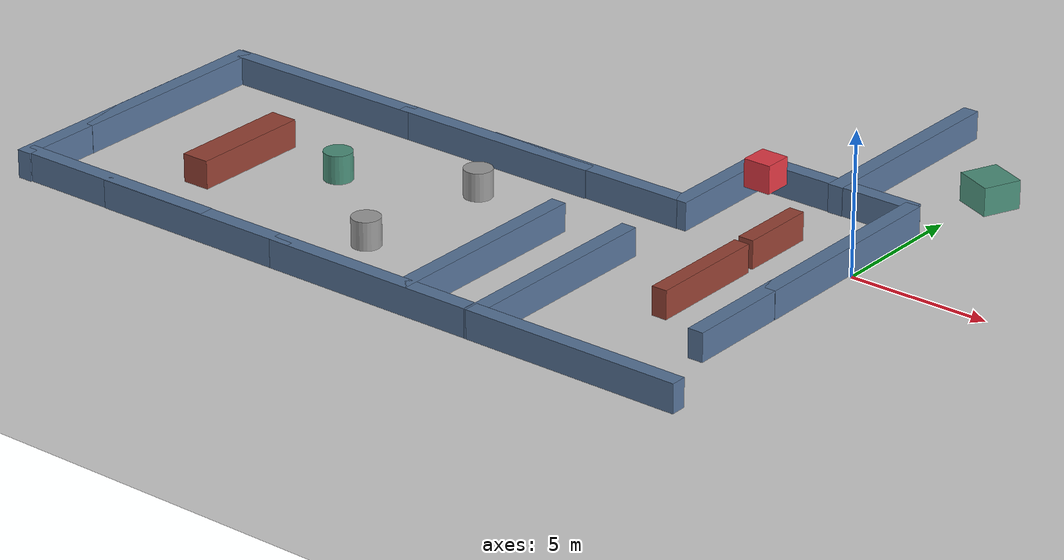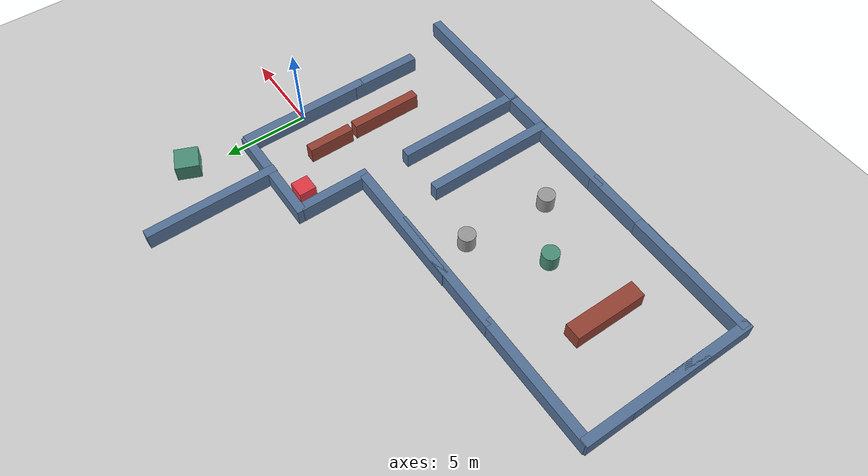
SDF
<sdf version="1.6">
 <world name="default">
  <model name="ground_plane">
   <static>1</static>
   <link name="link">
    <collision name="collision">
     <geometry><plane><normal>0 0 1</normal><size>100 100</size></plane></geometry>
     <surface><friction><ode><mu>100</mu><mu2>50</mu2></ode></friction></surface>
    </collision>
    <visual name="visual">
     <cast_shadows>0</cast_shadows>
     <geometry><plane><normal>0 0 1</normal><size>100 100</size></plane></geometry>
     <material>
      <script><uri>file://media/materials/scripts/gazebo.material</uri><name>Gazebo/Grey</name></script>
     </material>
    </visual>
   </link>
  </model>
  <model name="mazesummer1">
   <pose>0 -0 0.499991 0 -0 0</pose>
   <link name="cylinder_big_link">
    <pose>-16.6447 -5.27396 0.499997 0 -0 0</pose>
    <inertial>
     <mass>1</mass>
     <inertia><ixx>0.15</ixx><ixy>0</ixy><ixz>0</ixz><iyy>0.15</iyy><iyz>0</iyz><izz>0.13</izz></inertia>
    </inertial>
    <visual name="visual">
     <geometry><cylinder><radius>0.5</radius><length>1</length></cylinder></geometry>
     <material>
      <lighting>1</lighting>
      <script><uri>file://media/materials/scripts/gazebo.material</uri><name>Gazebo/Grey</name></script>
      <ambient>0.290196 0.560784 0.47451 1</ambient>
      <diffuse>0.290196 0.560784 0.47451 1</diffuse>
      <specular>0.01 0.01 0.01 1</specular>
      <emissive>0 0 0 1</emissive>
     </material>
    </visual>
    <collision name="collision">
     <geometry><cylinder><radius>0.5</radius><length>1</length></cylinder></geometry>
     <surface>
      <friction>
       <ode><mu>1</mu><mu2>1</mu2><fdir1>0 0 0</fdir1><slip1>0</slip1><slip2>0</slip2></ode>
       <torsional>
        <coefficient>1</coefficient>
        <patch_radius>0</patch_radius>
        <surface_radius>0</surface_radius>
        <use_patch_radius>1</use_patch_radius>
        <ode><slip>0</slip></ode>
       </torsional>
      </friction>
      <bounce><restitution_coefficient>0</restitution_coefficient><threshold>1e+06</threshold></bounce>
      <contact>
       <collide_without_contact>0</collide_without_contact>
       <collide_without_contact_bitmask>1</collide_without_contact_bitmask>
       <collide_bitmask>1</collide_bitmask>
       <ode>
        <soft_cfm>0</soft_cfm>
        <soft_erp>0.2</soft_erp>
        <kp>1e+13</kp>
        <kd>1</kd>
        <max_vel>0.01</max_vel>
        <min_depth>0</min_depth>
       </ode>
       <bullet>
        <split_impulse>1</split_impulse>
        <split_impulse_penetration_threshold>-0.01</split_impulse_penetration_threshold>
        <soft_cfm>0</soft_cfm>
        <soft_erp>0.2</soft_erp>
        <kp>1e+13</kp>
        <kd>1</kd>
       </bullet>
      </contact>
     </surface>
    </collision>
   </link>
   <link name="wall1_custom_link">
    <pose>-20.6541 -5.60724 -0.000514 -0.000514 -6e-06 0</pose>
    <inertial>
     <mass>2.3361</mass>
     <inertia><ixx>0.25269</ixx><ixy>0</ixy><ixz>0</ixz><iyy>3.75965</iyy><iyz>0</iyz><izz>3.62299</izz></inertia>
    </inertial>
    <visual name="visual">
     <geometry><box><size>1 4.35376 1</size></box></geometry>
     <material>
      <lighting>1</lighting>
      <script><uri>file://media/materials/scripts/gazebo.material</uri><name>Gazebo/Grey</name></script>
      <ambient>0.580392 0.25098 0.196078 1</ambient>
      <diffuse>0.580392 0.25098 0.196078 1</diffuse>
      <specular>0.01 0.01 0.01 1</specular>
      <emissive>0 0 0 1</emissive>
      <shader type="pixel"/>
     </material>
    </visual>
    <collision name="collision">
     <geometry><box><size>1 4.35376 1</size></box></geometry>
     <surface>
      <friction>
       <ode><mu>1</mu><mu2>1</mu2><fdir1>0 0 0</fdir1><slip1>0</slip1><slip2>0</slip2></ode>
       <torsional>
        <coefficient>1</coefficient>
        <patch_radius>0</patch_radius>
        <surface_radius>0</surface_radius>
        <use_patch_radius>1</use_patch_radius>
        <ode><slip>0</slip></ode>
       </torsional>
      </friction>
      <bounce><restitution_coefficient>0</restitution_coefficient><threshold>1e+06</threshold></bounce>
      <contact>
       <collide_without_contact>0</collide_without_contact>
       <collide_without_contact_bitmask>1</collide_without_contact_bitmask>
       <collide_bitmask>1</collide_bitmask>
       <ode>
        <soft_cfm>0</soft_cfm>
        <soft_erp>0.2</soft_erp>
        <kp>1e+13</kp>
        <kd>1</kd>
        <max_vel>0.01</max_vel>
        <min_depth>0</min_depth>
       </ode>
       <bullet>
        <split_impulse>1</split_impulse>
        <split_impulse_penetration_threshold>-0.01</split_impulse_penetration_threshold>
        <soft_cfm>0</soft_cfm>
        <soft_erp>0.2</soft_erp>
        <kp>1e+13</kp>
        <kd>1</kd>
       </bullet>
      </contact>
     </surface>
    </collision>
   </link>
   <link name="maze2_box">
    <pose>-5.520520 2.979450 0.5 0 -0 0</pose>
    <inertial>
     <mass>1</mass>
     <inertia>
      <ixx>0.166667</ixx>
      <ixy>0</ixy>
      <ixz>0</ixz>
      <iyy>0.166667</iyy>
      <iyz>0</iyz>
      <izz>0.166667</izz>
     </inertia>
    </inertial>
    <visual name="visual">
     <geometry><box><size>1 1 1</size></box></geometry>
     <material>
      <lighting>1</lighting>
      <script><uri>file://media/materials/scripts/gazebo.material</uri><name>Gazebo/Grey</name></script>
      <ambient>0.882353 0.219608 0.262745 1</ambient>
      <diffuse>0.882353 0.219608 0.262745 1</diffuse>
      <specular>0.01 0.01 0.01 1</specular>
      <emissive>0 0 0 1</emissive>
     </material>
    </visual>
    <collision name="collision">
     <geometry><box><size>1 1 1</size></box></geometry>
     <surface>
      <friction>
       <ode><mu>1</mu><mu2>1</mu2><fdir1>0 0 0</fdir1><slip1>0</slip1><slip2>0</slip2></ode>
       <torsional>
        <coefficient>1</coefficient>
        <patch_radius>0</patch_radius>
        <surface_radius>0</surface_radius>
        <use_patch_radius>1</use_patch_radius>
        <ode><slip>0</slip></ode>
       </torsional>
      </friction>
      <bounce><restitution_coefficient>0</restitution_coefficient><threshold>1e+06</threshold></bounce>
      <contact>
       <collide_without_contact>0</collide_without_contact>
       <collide_without_contact_bitmask>1</collide_without_contact_bitmask>
       <collide_bitmask>1</collide_bitmask>
       <ode>
        <soft_cfm>0</soft_cfm>
        <soft_erp>0.2</soft_erp>
        <kp>1e+13</kp>
        <kd>1</kd>
        <max_vel>0.01</max_vel>
        <min_depth>0</min_depth>
       </ode>
       <bullet>
        <split_impulse>1</split_impulse>
        <split_impulse_penetration_threshold>-0.01</split_impulse_penetration_threshold>
        <soft_cfm>0</soft_cfm>
        <soft_erp>0.2</soft_erp>
        <kp>1e+13</kp>
        <kd>1</kd>
       </bullet>
      </contact>
     </surface>
    </collision>
   </link>
   <link name="wall0_link">
    <pose>-21.4897 -10.6297 9e-06 0 -0 0</pose>
    <inertial>
     <mass>4.30693</mass>
     <inertia><ixx>0.46587</ixx><ixy>0</ixy><ixz>0</ixz><iyy>22.6991</iyy><iyz>0</iyz><izz>22.4471</izz></inertia>
    </inertial>
    <visual name="visual">
     <geometry><box><size>7.88951 0.545905 1</size></box></geometry>
     <material>
      <lighting>1</lighting>
      <script><uri>file://media/materials/scripts/gazebo.material</uri><name>Gazebo/Grey</name></script>
      <ambient>0.333333 0.447059 0.592157 1</ambient>
      <diffuse>0.333333 0.447059 0.592157 1</diffuse>
      <specular>0.01 0.01 0.01 1</specular>
      <emissive>0 0 0 1</emissive>
      <shader type="pixel"/>
     </material>
    </visual>
    <collision name="collision">
     <geometry><box><size>7.88951 0.545905 1</size></box></geometry>
     <surface>
      <friction>
       <ode><mu>1</mu><mu2>1</mu2><fdir1>0 0 0</fdir1><slip1>0</slip1><slip2>0</slip2></ode>
       <torsional>
        <coefficient>1</coefficient>
        <patch_radius>0</patch_radius>
        <surface_radius>0</surface_radius>
        <use_patch_radius>1</use_patch_radius>
        <ode><slip>0</slip></ode>
       </torsional>
      </friction>
      <bounce><restitution_coefficient>0</restitution_coefficient><threshold>1e+06</threshold></bounce>
      <contact>
       <collide_without_contact>0</collide_without_contact>
       <collide_without_contact_bitmask>1</collide_without_contact_bitmask>
       <collide_bitmask>1</collide_bitmask>
       <ode>
        <soft_cfm>0</soft_cfm>
        <soft_erp>0.2</soft_erp>
        <kp>1e+13</kp>
        <kd>1</kd>
        <max_vel>0.01</max_vel>
        <min_depth>0</min_depth>
       </ode>
       <bullet>
        <split_impulse>1</split_impulse>
        <split_impulse_penetration_threshold>-0.01</split_impulse_penetration_threshold>
        <soft_cfm>0</soft_cfm>
        <soft_erp>0.2</soft_erp>
        <kp>1e+13</kp>
        <kd>1</kd>
       </bullet>
      </contact>
     </surface>
    </collision>
   </link>
   <link name="wall1_link">
    <pose>-17.8012 -10.6509 9e-06 0 -0 0</pose>
    <inertial>
     <mass>4.30693</mass>
     <inertia><ixx>0.46587</ixx><ixy>0</ixy><ixz>0</ixz><iyy>22.6991</iyy><iyz>0</iyz><izz>22.4471</izz></inertia>
    </inertial>
    <visual name="visual">
     <geometry><box><size>7.88951 0.545905 1</size></box></geometry>
     <material>
      <lighting>1</lighting>
      <script><uri>file://media/materials/scripts/gazebo.material</uri><name>Gazebo/Grey</name></script>
      <ambient>0.333333 0.447059 0.592157 1</ambient>
      <diffuse>0.333333 0.447059 0.592157 1</diffuse>
      <specular>0.01 0.01 0.01 1</specular>
      <emissive>0 0 0 1</emissive>
      <shader type="pixel"/>
     </material>
    </visual>
    <collision name="collision">
     <geometry><box><size>7.88951 0.545905 1</size></box></geometry>
     <surface>
      <friction>
       <ode><mu>1</mu><mu2>1</mu2><fdir1>0 0 0</fdir1><slip1>0</slip1><slip2>0</slip2></ode>
       <torsional>
        <coefficient>1</coefficient>
        <patch_radius>0</patch_radius>
        <surface_radius>0</surface_radius>
        <use_patch_radius>1</use_patch_radius>
        <ode><slip>0</slip></ode>
       </torsional>
      </friction>
      <bounce><restitution_coefficient>0</restitution_coefficient><threshold>1e+06</threshold></bounce>
      <contact>
       <collide_without_contact>0</collide_without_contact>
       <collide_without_contact_bitmask>1</collide_without_contact_bitmask>
       <collide_bitmask>1</collide_bitmask>
       <ode>
        <soft_cfm>0</soft_cfm>
        <soft_erp>0.2</soft_erp>
        <kp>1e+13</kp>
        <kd>1</kd>
        <max_vel>0.01</max_vel>
        <min_depth>0</min_depth>
       </ode>
       <bullet>
        <split_impulse>1</split_impulse>
        <split_impulse_penetration_threshold>-0.01</split_impulse_penetration_threshold>
        <soft_cfm>0</soft_cfm>
        <soft_erp>0.2</soft_erp>
        <kp>1e+13</kp>
        <kd>1</kd>
       </bullet>
      </contact>
     </surface>
    </collision>
   </link>
   <link name="wall20_link">
    <pose>-21.5718 -0.350427 9e-06 0 -0 0</pose>
    <inertial>
     <mass>4.30693</mass>
     <inertia><ixx>0.46587</ixx><ixy>0</ixy><ixz>0</ixz><iyy>22.6991</iyy><iyz>0</iyz><izz>22.4471</izz></inertia>
    </inertial>
    <visual name="visual">
     <geometry><box><size>7.88951 0.545905 1</size></box></geometry>
     <material>
      <lighting>1</lighting>
      <script><uri>file://media/materials/scripts/gazebo.material</uri><name>Gazebo/Grey</name></script>
      <ambient>0.333333 0.447059 0.592157 1</ambient>
      <diffuse>0.333333 0.447059 0.592157 1</diffuse>
      <specular>0.01 0.01 0.01 1</specular>
      <emissive>0 0 0 1</emissive>
      <shader type="pixel"/>
     </material>
    </visual>
    <collision name="collision">
     <geometry><box><size>7.88951 0.545905 1</size></box></geometry>
     <surface>
      <friction>
       <ode><mu>1</mu><mu2>1</mu2><fdir1>0 0 0</fdir1><slip1>0</slip1><slip2>0</slip2></ode>
       <torsional>
        <coefficient>1</coefficient>
        <patch_radius>0</patch_radius>
        <surface_radius>0</surface_radius>
        <use_patch_radius>1</use_patch_radius>
        <ode><slip>0</slip></ode>
       </torsional>
      </friction>
      <bounce><restitution_coefficient>0</restitution_coefficient><threshold>1e+06</threshold></bounce>
      <contact>
       <collide_without_contact>0</collide_without_contact>
       <collide_without_contact_bitmask>1</collide_without_contact_bitmask>
       <collide_bitmask>1</collide_bitmask>
       <ode>
        <soft_cfm>0</soft_cfm>
        <soft_erp>0.2</soft_erp>
        <kp>1e+13</kp>
        <kd>1</kd>
        <max_vel>0.01</max_vel>
        <min_depth>0</min_depth>
       </ode>
       <bullet>
        <split_impulse>1</split_impulse>
        <split_impulse_penetration_threshold>-0.01</split_impulse_penetration_threshold>
        <soft_cfm>0</soft_cfm>
        <soft_erp>0.2</soft_erp>
        <kp>1e+13</kp>
        <kd>1</kd>
       </bullet>
      </contact>
     </surface>
    </collision>
   </link>
   <link name="wall21_link">
    <pose>-14.0594 -0.346312 9e-06 0 -0 0</pose>
    <inertial>
     <mass>4.30693</mass>
     <inertia><ixx>0.46587</ixx><ixy>0</ixy><ixz>0</ixz><iyy>22.6991</iyy><iyz>0</iyz><izz>22.4471</izz></inertia>
    </inertial>
    <visual name="visual">
     <geometry><box><size>7.88951 0.545905 1</size></box></geometry>
     <material>
      <lighting>1</lighting>
      <script><uri>file://media/materials/scripts/gazebo.material</uri><name>Gazebo/Grey</name></script>
      <ambient>0.333333 0.447059 0.592157 1</ambient>
      <diffuse>0.333333 0.447059 0.592157 1</diffuse>
      <specular>0.01 0.01 0.01 1</specular>
      <emissive>0 0 0 1</emissive>
      <shader type="pixel"/>
     </material>
    </visual>
    <collision name="collision">
     <geometry><box><size>7.88951 0.545905 1</size></box></geometry>
     <surface>
      <friction>
       <ode><mu>1</mu><mu2>1</mu2><fdir1>0 0 0</fdir1><slip1>0</slip1><slip2>0</slip2></ode>
       <torsional>
        <coefficient>1</coefficient>
        <patch_radius>0</patch_radius>
        <surface_radius>0</surface_radius>
        <use_patch_radius>1</use_patch_radius>
        <ode><slip>0</slip></ode>
       </torsional>
      </friction>
      <bounce><restitution_coefficient>0</restitution_coefficient><threshold>1e+06</threshold></bounce>
      <contact>
       <collide_without_contact>0</collide_without_contact>
       <collide_without_contact_bitmask>1</collide_without_contact_bitmask>
       <collide_bitmask>1</collide_bitmask>
       <ode>
        <soft_cfm>0</soft_cfm>
        <soft_erp>0.2</soft_erp>
        <kp>1e+13</kp>
        <kd>1</kd>
        <max_vel>0.01</max_vel>
        <min_depth>0</min_depth>
       </ode>
       <bullet>
        <split_impulse>1</split_impulse>
        <split_impulse_penetration_threshold>-0.01</split_impulse_penetration_threshold>
        <soft_cfm>0</soft_cfm>
        <soft_erp>0.2</soft_erp>
        <kp>1e+13</kp>
        <kd>1</kd>
       </bullet>
      </contact>
     </surface>
    </collision>
   </link>
   <link name="wall3_link">
    <pose>-10.6658 -10.6545 9e-06 0 -0 0</pose>
    <inertial>
     <mass>4.30693</mass>
     <inertia><ixx>0.46587</ixx><ixy>0</ixy><ixz>0</ixz><iyy>22.6991</iyy><iyz>0</iyz><izz>22.4471</izz></inertia>
    </inertial>
    <visual name="visual">
     <geometry><box><size>7.88951 0.545905 1</size></box></geometry>
     <material>
      <lighting>1</lighting>
      <script><uri>file://media/materials/scripts/gazebo.material</uri><name>Gazebo/Grey</name></script>
      <ambient>0.333333 0.447059 0.592157 1</ambient>
      <diffuse>0.333333 0.447059 0.592157 1</diffuse>
      <specular>0.01 0.01 0.01 1</specular>
      <emissive>0 0 0 1</emissive>
      <shader type="pixel"/>
     </material>
    </visual>
    <collision name="collision">
     <geometry><box><size>7.88951 0.545905 1</size></box></geometry>
     <surface>
      <friction>
       <ode><mu>1</mu><mu2>1</mu2><fdir1>0 0 0</fdir1><slip1>0</slip1><slip2>0</slip2></ode>
       <torsional>
        <coefficient>1</coefficient>
        <patch_radius>0</patch_radius>
        <surface_radius>0</surface_radius>
        <use_patch_radius>1</use_patch_radius>
        <ode><slip>0</slip></ode>
       </torsional>
      </friction>
      <bounce><restitution_coefficient>0</restitution_coefficient><threshold>1e+06</threshold></bounce>
      <contact>
       <collide_without_contact>0</collide_without_contact>
       <collide_without_contact_bitmask>1</collide_without_contact_bitmask>
       <collide_bitmask>1</collide_bitmask>
       <ode>
        <soft_cfm>0</soft_cfm>
        <soft_erp>0.2</soft_erp>
        <kp>1e+13</kp>
        <kd>1</kd>
        <max_vel>0.01</max_vel>
        <min_depth>0</min_depth>
       </ode>
       <bullet>
        <split_impulse>1</split_impulse>
        <split_impulse_penetration_threshold>-0.01</split_impulse_penetration_threshold>
        <soft_cfm>0</soft_cfm>
        <soft_erp>0.2</soft_erp>
        <kp>1e+13</kp>
        <kd>1</kd>
       </bullet>
      </contact>
     </surface>
    </collision>
   </link>
   <link name="wall24_link">
    <pose>-3.41756 3.78222 9e-06 0 -0 0</pose>
    <inertial>
     <mass>3.50538</mass>
     <inertia><ixx>0.379168</ixx><ixy>0</ixy><ixz>0</ixz><iyy>12.3366</iyy><iyz>0</iyz><izz>12.1315</izz></inertia>
    </inertial>
    <visual name="visual">
     <geometry><box><size>6.42122 0.545905 1</size></box></geometry>
     <material>
      <lighting>1</lighting>
      <script><uri>file://media/materials/scripts/gazebo.material</uri><name>Gazebo/Grey</name></script>
      <ambient>0.333333 0.447059 0.592157 1</ambient>
      <diffuse>0.333333 0.447059 0.592157 1</diffuse>
      <specular>0.01 0.01 0.01 1</specular>
      <emissive>0 0 0 1</emissive>
      <shader type="pixel"/>
     </material>
    </visual>
    <collision name="collision">
     <geometry><box><size>6.42122 0.545905 1</size></box></geometry>
     <surface>
      <friction>
       <ode><mu>1</mu><mu2>1</mu2><fdir1>0 0 0</fdir1><slip1>0</slip1><slip2>0</slip2></ode>
       <torsional>
        <coefficient>1</coefficient>
        <patch_radius>0</patch_radius>
        <surface_radius>0</surface_radius>
        <use_patch_radius>1</use_patch_radius>
        <ode><slip>0</slip></ode>
       </torsional>
      </friction>
      <bounce><restitution_coefficient>0</restitution_coefficient><threshold>1e+06</threshold></bounce>
      <contact>
       <collide_without_contact>0</collide_without_contact>
       <collide_without_contact_bitmask>1</collide_without_contact_bitmask>
       <collide_bitmask>1</collide_bitmask>
       <ode>
        <soft_cfm>0</soft_cfm>
        <soft_erp>0.2</soft_erp>
        <kp>1e+13</kp>
        <kd>1</kd>
        <max_vel>0.01</max_vel>
        <min_depth>0</min_depth>
       </ode>
       <bullet>
        <split_impulse>1</split_impulse>
        <split_impulse_penetration_threshold>-0.01</split_impulse_penetration_threshold>
        <soft_cfm>0</soft_cfm>
        <soft_erp>0.2</soft_erp>
        <kp>1e+13</kp>
        <kd>1</kd>
       </bullet>
      </contact>
     </surface>
    </collision>
   </link>
   <link name="wall7_link">
    <pose>-2.67814 -10.6624 9e-06 0 -0 0</pose>
    <inertial>
     <mass>4.30693</mass>
     <inertia><ixx>0.46587</ixx><ixy>0</ixy><ixz>0</ixz><iyy>22.6991</iyy><iyz>0</iyz><izz>22.4471</izz></inertia>
    </inertial>
    <visual name="visual">
     <geometry><box><size>7.88951 0.545905 1</size></box></geometry>
     <material>
      <lighting>1</lighting>
      <script><uri>file://media/materials/scripts/gazebo.material</uri><name>Gazebo/Grey</name></script>
      <ambient>0.333333 0.447059 0.592157 1</ambient>
      <diffuse>0.333333 0.447059 0.592157 1</diffuse>
      <specular>0.01 0.01 0.01 1</specular>
      <emissive>0 0 0 1</emissive>
      <shader type="pixel"/>
     </material>
    </visual>
    <collision name="collision">
     <geometry><box><size>7.88951 0.545905 1</size></box></geometry>
     <surface>
      <friction>
       <ode><mu>1</mu><mu2>1</mu2><fdir1>0 0 0</fdir1><slip1>0</slip1><slip2>0</slip2></ode>
       <torsional>
        <coefficient>1</coefficient>
        <patch_radius>0</patch_radius>
        <surface_radius>0</surface_radius>
        <use_patch_radius>1</use_patch_radius>
        <ode><slip>0</slip></ode>
       </torsional>
      </friction>
      <bounce><restitution_coefficient>0</restitution_coefficient><threshold>1e+06</threshold></bounce>
      <contact>
       <collide_without_contact>0</collide_without_contact>
       <collide_without_contact_bitmask>1</collide_without_contact_bitmask>
       <collide_bitmask>1</collide_bitmask>
       <ode>
        <soft_cfm>0</soft_cfm>
        <soft_erp>0.2</soft_erp>
        <kp>1e+13</kp>
        <kd>1</kd>
        <max_vel>0.01</max_vel>
        <min_depth>0</min_depth>
       </ode>
       <bullet>
        <split_impulse>1</split_impulse>
        <split_impulse_penetration_threshold>-0.01</split_impulse_penetration_threshold>
        <soft_cfm>0</soft_cfm>
        <soft_erp>0.2</soft_erp>
        <kp>1e+13</kp>
        <kd>1</kd>
       </bullet>
      </contact>
     </surface>
    </collision>
   </link>
   <link name="wall22_link">
    <pose>-10.3733 -0.31076 9e-06 0 -0 0</pose>
    <inertial>
     <mass>4.30693</mass>
     <inertia><ixx>0.46587</ixx><ixy>0</ixy><ixz>0</ixz><iyy>22.6991</iyy><iyz>0</iyz><izz>22.4471</izz></inertia>
    </inertial>
    <visual name="visual">
     <geometry><box><size>7.88951 0.545905 1</size></box></geometry>
     <material>
      <lighting>1</lighting>
      <script><uri>file://media/materials/scripts/gazebo.material</uri><name>Gazebo/Grey</name></script>
      <ambient>0.333333 0.447059 0.592157 1</ambient>
      <diffuse>0.333333 0.447059 0.592157 1</diffuse>
      <specular>0.01 0.01 0.01 1</specular>
      <emissive>0 0 0 1</emissive>
      <shader type="pixel"/>
     </material>
    </visual>
    <collision name="collision">
     <geometry><box><size>7.88951 0.545905 1</size></box></geometry>
     <surface>
      <friction>
       <ode><mu>1</mu><mu2>1</mu2><fdir1>0 0 0</fdir1><slip1>0</slip1><slip2>0</slip2></ode>
       <torsional>
        <coefficient>1</coefficient>
        <patch_radius>0</patch_radius>
        <surface_radius>0</surface_radius>
        <use_patch_radius>1</use_patch_radius>
        <ode><slip>0</slip></ode>
       </torsional>
      </friction>
      <bounce><restitution_coefficient>0</restitution_coefficient><threshold>1e+06</threshold></bounce>
      <contact>
       <collide_without_contact>0</collide_without_contact>
       <collide_without_contact_bitmask>1</collide_without_contact_bitmask>
       <collide_bitmask>1</collide_bitmask>
       <ode>
        <soft_cfm>0</soft_cfm>
        <soft_erp>0.2</soft_erp>
        <kp>1e+13</kp>
        <kd>1</kd>
        <max_vel>0.01</max_vel>
        <min_depth>0</min_depth>
       </ode>
       <bullet>
        <split_impulse>1</split_impulse>
        <split_impulse_penetration_threshold>-0.01</split_impulse_penetration_threshold>
        <soft_cfm>0</soft_cfm>
        <soft_erp>0.2</soft_erp>
        <kp>1e+13</kp>
        <kd>1</kd>
       </bullet>
      </contact>
     </surface>
    </collision>
   </link>
   <link name="wall18_link">
    <pose>-25.335 -7.00928 9e-06 0 0 -1.56693</pose>
    <inertial>
     <mass>4.30693</mass>
     <inertia><ixx>0.46587</ixx><ixy>0</ixy><ixz>0</ixz><iyy>22.6991</iyy><iyz>0</iyz><izz>22.4471</izz></inertia>
    </inertial>
    <visual name="visual">
     <geometry><box><size>7.88951 0.545905 1</size></box></geometry>
     <material>
      <lighting>1</lighting>
      <script><uri>file://media/materials/scripts/gazebo.material</uri><name>Gazebo/Grey</name></script>
      <ambient>0.333333 0.447059 0.592157 1</ambient>
      <diffuse>0.333333 0.447059 0.592157 1</diffuse>
      <specular>0.01 0.01 0.01 1</specular>
      <emissive>0 0 0 1</emissive>
      <shader type="pixel"/>
     </material>
    </visual>
    <collision name="collision">
     <geometry><box><size>7.88951 0.545905 1</size></box></geometry>
     <surface>
      <friction>
       <ode><mu>1</mu><mu2>1</mu2><fdir1>0 0 0</fdir1><slip1>0</slip1><slip2>0</slip2></ode>
       <torsional>
        <coefficient>1</coefficient>
        <patch_radius>0</patch_radius>
        <surface_radius>0</surface_radius>
        <use_patch_radius>1</use_patch_radius>
        <ode><slip>0</slip></ode>
       </torsional>
      </friction>
      <bounce><restitution_coefficient>0</restitution_coefficient><threshold>1e+06</threshold></bounce>
      <contact>
       <collide_without_contact>0</collide_without_contact>
       <collide_without_contact_bitmask>1</collide_without_contact_bitmask>
       <collide_bitmask>1</collide_bitmask>
       <ode>
        <soft_cfm>0</soft_cfm>
        <soft_erp>0.2</soft_erp>
        <kp>1e+13</kp>
        <kd>1</kd>
        <max_vel>0.01</max_vel>
        <min_depth>0</min_depth>
       </ode>
       <bullet>
        <split_impulse>1</split_impulse>
        <split_impulse_penetration_threshold>-0.01</split_impulse_penetration_threshold>
        <soft_cfm>0</soft_cfm>
        <soft_erp>0.2</soft_erp>
        <kp>1e+13</kp>
        <kd>1</kd>
       </bullet>
      </contact>
     </surface>
    </collision>
   </link>
   <link name="wall19_link">
    <pose>-25.3389 -4.07653 9e-06 0 0 -1.56693</pose>
    <inertial>
     <mass>4.30693</mass>
     <inertia><ixx>0.46587</ixx><ixy>0</ixy><ixz>0</ixz><iyy>22.6991</iyy><iyz>0</iyz><izz>22.4471</izz></inertia>
    </inertial>
    <visual name="visual">
     <geometry><box><size>7.88951 0.545905 1</size></box></geometry>
     <material>
      <lighting>1</lighting>
      <script><uri>file://media/materials/scripts/gazebo.material</uri><name>Gazebo/Grey</name></script>
      <ambient>0.333333 0.447059 0.592157 1</ambient>
      <diffuse>0.333333 0.447059 0.592157 1</diffuse>
      <specular>0.01 0.01 0.01 1</specular>
      <emissive>0 0 0 1</emissive>
      <shader type="pixel"/>
     </material>
    </visual>
    <collision name="collision">
     <geometry><box><size>7.88951 0.545905 1</size></box></geometry>
     <surface>
      <friction>
       <ode><mu>1</mu><mu2>1</mu2><fdir1>0 0 0</fdir1><slip1>0</slip1><slip2>0</slip2></ode>
       <torsional>
        <coefficient>1</coefficient>
        <patch_radius>0</patch_radius>
        <surface_radius>0</surface_radius>
        <use_patch_radius>1</use_patch_radius>
        <ode><slip>0</slip></ode>
       </torsional>
      </friction>
      <bounce><restitution_coefficient>0</restitution_coefficient><threshold>1e+06</threshold></bounce>
      <contact>
       <collide_without_contact>0</collide_without_contact>
       <collide_without_contact_bitmask>1</collide_without_contact_bitmask>
       <collide_bitmask>1</collide_bitmask>
       <ode>
        <soft_cfm>0</soft_cfm>
        <soft_erp>0.2</soft_erp>
        <kp>1e+13</kp>
        <kd>1</kd>
        <max_vel>0.01</max_vel>
        <min_depth>0</min_depth>
       </ode>
       <bullet>
        <split_impulse>1</split_impulse>
        <split_impulse_penetration_threshold>-0.01</split_impulse_penetration_threshold>
        <soft_cfm>0</soft_cfm>
        <soft_erp>0.2</soft_erp>
        <kp>1e+13</kp>
        <kd>1</kd>
       </bullet>
      </contact>
     </surface>
    </collision>
   </link>
   <link name="wall4_link">
    <pose>-9.31294 -6.93569 9e-06 0 0 -1.56693</pose>
    <inertial>
     <mass>4.30693</mass>
     <inertia><ixx>0.46587</ixx><ixy>0</ixy><ixz>0</ixz><iyy>22.6991</iyy><iyz>0</iyz><izz>22.4471</izz></inertia>
    </inertial>
    <visual name="visual">
     <geometry><box><size>7.88951 0.545905 1</size></box></geometry>
     <material>
      <lighting>1</lighting>
      <script><uri>file://media/materials/scripts/gazebo.material</uri><name>Gazebo/Grey</name></script>
      <ambient>0.333333 0.447059 0.592157 1</ambient>
      <diffuse>0.333333 0.447059 0.592157 1</diffuse>
      <specular>0.01 0.01 0.01 1</specular>
      <emissive>0 0 0 1</emissive>
      <shader type="pixel"/>
     </material>
    </visual>
    <collision name="collision">
     <geometry><box><size>7.88951 0.545905 1</size></box></geometry>
     <surface>
      <friction>
       <ode><mu>1</mu><mu2>1</mu2><fdir1>0 0 0</fdir1><slip1>0</slip1><slip2>0</slip2></ode>
       <torsional>
        <coefficient>1</coefficient>
        <patch_radius>0</patch_radius>
        <surface_radius>0</surface_radius>
        <use_patch_radius>1</use_patch_radius>
        <ode><slip>0</slip></ode>
       </torsional>
      </friction>
      <bounce><restitution_coefficient>0</restitution_coefficient><threshold>1e+06</threshold></bounce>
      <contact>
       <collide_without_contact>0</collide_without_contact>
       <collide_without_contact_bitmask>1</collide_without_contact_bitmask>
       <collide_bitmask>1</collide_bitmask>
       <ode>
        <soft_cfm>0</soft_cfm>
        <soft_erp>0.2</soft_erp>
        <kp>1e+13</kp>
        <kd>1</kd>
        <max_vel>0.01</max_vel>
        <min_depth>0</min_depth>
       </ode>
       <bullet>
        <split_impulse>1</split_impulse>
        <split_impulse_penetration_threshold>-0.01</split_impulse_penetration_threshold>
        <soft_cfm>0</soft_cfm>
        <soft_erp>0.2</soft_erp>
        <kp>1e+13</kp>
        <kd>1</kd>
       </bullet>
      </contact>
     </surface>
    </collision>
   </link>
   <link name="wall5_link">
    <pose>-6.43669 -6.98415 9e-06 0 0 -1.56693</pose>
    <inertial>
     <mass>4.30693</mass>
     <inertia><ixx>0.46587</ixx><ixy>0</ixy><ixz>0</ixz><iyy>22.6991</iyy><iyz>0</iyz><izz>22.4471</izz></inertia>
    </inertial>
    <visual name="visual">
     <geometry><box><size>7.88951 0.545905 1</size></box></geometry>
     <material>
      <lighting>1</lighting>
      <script><uri>file://media/materials/scripts/gazebo.material</uri><name>Gazebo/Grey</name></script>
      <ambient>0.333333 0.447059 0.592157 1</ambient>
      <diffuse>0.333333 0.447059 0.592157 1</diffuse>
      <specular>0.01 0.01 0.01 1</specular>
      <emissive>0 0 0 1</emissive>
      <shader type="pixel"/>
     </material>
    </visual>
    <collision name="collision">
     <geometry><box><size>7.88951 0.545905 1</size></box></geometry>
     <surface>
      <friction>
       <ode><mu>1</mu><mu2>1</mu2><fdir1>0 0 0</fdir1><slip1>0</slip1><slip2>0</slip2></ode>
       <torsional>
        <coefficient>1</coefficient>
        <patch_radius>0</patch_radius>
        <surface_radius>0</surface_radius>
        <use_patch_radius>1</use_patch_radius>
        <ode><slip>0</slip></ode>
       </torsional>
      </friction>
      <bounce><restitution_coefficient>0</restitution_coefficient><threshold>1e+06</threshold></bounce>
      <contact>
       <collide_without_contact>0</collide_without_contact>
       <collide_without_contact_bitmask>1</collide_without_contact_bitmask>
       <collide_bitmask>1</collide_bitmask>
       <ode>
        <soft_cfm>0</soft_cfm>
        <soft_erp>0.2</soft_erp>
        <kp>1e+13</kp>
        <kd>1</kd>
        <max_vel>0.01</max_vel>
        <min_depth>0</min_depth>
       </ode>
       <bullet>
        <split_impulse>1</split_impulse>
        <split_impulse_penetration_threshold>-0.01</split_impulse_penetration_threshold>
        <soft_cfm>0</soft_cfm>
        <soft_erp>0.2</soft_erp>
        <kp>1e+13</kp>
        <kd>1</kd>
       </bullet>
      </contact>
     </surface>
    </collision>
   </link>
   <link name="wall23_link">
    <pose>-6.35585 1.56416 9e-06 0 0 -1.56693</pose>
    <inertial>
     <mass>2.3361</mass>
     <inertia><ixx>0.25269</ixx><ixy>0</ixy><ixz>0</ixz><iyy>3.75965</iyy><iyz>0</iyz><izz>3.62299</izz></inertia>
    </inertial>
    <visual name="visual">
     <geometry><box><size>4.27931 0.545905 1</size></box></geometry>
     <material>
      <lighting>1</lighting>
      <script><uri>file://media/materials/scripts/gazebo.material</uri><name>Gazebo/Grey</name></script>
      <ambient>0.333333 0.447059 0.592157 1</ambient>
      <diffuse>0.333333 0.447059 0.592157 1</diffuse>
      <specular>0.01 0.01 0.01 1</specular>
      <emissive>0 0 0 1</emissive>
      <shader type="pixel"/>
     </material>
    </visual>
    <collision name="collision">
     <geometry><box><size>4.27931 0.545905 1</size></box></geometry>
     <surface>
      <friction>
       <ode><mu>1</mu><mu2>1</mu2><fdir1>0 0 0</fdir1><slip1>0</slip1><slip2>0</slip2></ode>
       <torsional>
        <coefficient>1</coefficient>
        <patch_radius>0</patch_radius>
        <surface_radius>0</surface_radius>
        <use_patch_radius>1</use_patch_radius>
        <ode><slip>0</slip></ode>
       </torsional>
      </friction>
      <bounce><restitution_coefficient>0</restitution_coefficient><threshold>1e+06</threshold></bounce>
      <contact>
       <collide_without_contact>0</collide_without_contact>
       <collide_without_contact_bitmask>1</collide_without_contact_bitmask>
       <collide_bitmask>1</collide_bitmask>
       <ode>
        <soft_cfm>0</soft_cfm>
        <soft_erp>0.2</soft_erp>
        <kp>1e+13</kp>
        <kd>1</kd>
        <max_vel>0.01</max_vel>
        <min_depth>0</min_depth>
       </ode>
       <bullet>
        <split_impulse>1</split_impulse>
        <split_impulse_penetration_threshold>-0.01</split_impulse_penetration_threshold>
        <soft_cfm>0</soft_cfm>
        <soft_erp>0.2</soft_erp>
        <kp>1e+13</kp>
        <kd>1</kd>
       </bullet>
      </contact>
     </surface>
    </collision>
   </link>
   <link name="wall25_link">
    <pose>-0.36051 -0.054697 9e-06 0 0 -1.56693</pose>
    <inertial>
     <mass>4.30693</mass>
     <inertia><ixx>0.46587</ixx><ixy>0</ixy><ixz>0</ixz><iyy>22.6991</iyy><iyz>0</iyz><izz>22.4471</izz></inertia>
    </inertial>
    <visual name="visual">
     <geometry><box><size>7.88951 0.545905 1</size></box></geometry>
     <material>
      <lighting>1</lighting>
      <script><uri>file://media/materials/scripts/gazebo.material</uri><name>Gazebo/Grey</name></script>
      <ambient>0.333333 0.447059 0.592157 1</ambient>
      <diffuse>0.333333 0.447059 0.592157 1</diffuse>
      <specular>0.01 0.01 0.01 1</specular>
      <emissive>0 0 0 1</emissive>
      <shader type="pixel"/>
     </material>
    </visual>
    <collision name="collision">
     <geometry><box><size>7.88951 0.545905 1</size></box></geometry>
     <surface>
      <friction>
       <ode><mu>1</mu><mu2>1</mu2><fdir1>0 0 0</fdir1><slip1>0</slip1><slip2>0</slip2></ode>
       <torsional>
        <coefficient>1</coefficient>
        <patch_radius>0</patch_radius>
        <surface_radius>0</surface_radius>
        <use_patch_radius>1</use_patch_radius>
        <ode><slip>0</slip></ode>
       </torsional>
      </friction>
      <bounce><restitution_coefficient>0</restitution_coefficient><threshold>1e+06</threshold></bounce>
      <contact>
       <collide_without_contact>0</collide_without_contact>
       <collide_without_contact_bitmask>1</collide_without_contact_bitmask>
       <collide_bitmask>1</collide_bitmask>
       <ode>
        <soft_cfm>0</soft_cfm>
        <soft_erp>0.2</soft_erp>
        <kp>1e+13</kp>
        <kd>1</kd>
        <max_vel>0.01</max_vel>
        <min_depth>0</min_depth>
       </ode>
       <bullet>
        <split_impulse>1</split_impulse>
        <split_impulse_penetration_threshold>-0.01</split_impulse_penetration_threshold>
        <soft_cfm>0</soft_cfm>
        <soft_erp>0.2</soft_erp>
        <kp>1e+13</kp>
        <kd>1</kd>
       </bullet>
      </contact>
     </surface>
    </collision>
   </link>
   <link name="wall28_link">
    <pose>-3.1358 7.42604 9e-06 0 0 -1.56693</pose>
    <inertial>
     <mass>4.30693</mass>
     <inertia><ixx>0.46587</ixx><ixy>0</ixy><ixz>0</ixz><iyy>22.6991</iyy><iyz>0</iyz><izz>22.4471</izz></inertia>
    </inertial>
    <visual name="visual">
     <geometry><box><size>7.88951 0.545905 1</size></box></geometry>
     <material>
      <lighting>1</lighting>
      <script><uri>file://media/materials/scripts/gazebo.material</uri><name>Gazebo/Grey</name></script>
      <ambient>0.333333 0.447059 0.592157 1</ambient>
      <diffuse>0.333333 0.447059 0.592157 1</diffuse>
      <specular>0.01 0.01 0.01 1</specular>
      <emissive>0 0 0 1</emissive>
      <shader type="pixel"/>
     </material>
    </visual>
    <collision name="collision">
     <geometry><box><size>7.88951 0.545905 1</size></box></geometry>
     <surface>
      <friction>
       <ode><mu>1</mu><mu2>1</mu2><fdir1>0 0 0</fdir1><slip1>0</slip1><slip2>0</slip2></ode>
       <torsional>
        <coefficient>1</coefficient>
        <patch_radius>0</patch_radius>
        <surface_radius>0</surface_radius>
        <use_patch_radius>1</use_patch_radius>
        <ode><slip>0</slip></ode>
       </torsional>
      </friction>
      <bounce><restitution_coefficient>0</restitution_coefficient><threshold>1e+06</threshold></bounce>
      <contact>
       <collide_without_contact>0</collide_without_contact>
       <collide_without_contact_bitmask>1</collide_without_contact_bitmask>
       <collide_bitmask>1</collide_bitmask>
       <ode>
        <soft_cfm>0</soft_cfm>
        <soft_erp>0.2</soft_erp>
        <kp>1e+13</kp>
        <kd>1</kd>
        <max_vel>0.01</max_vel>
        <min_depth>0</min_depth>
       </ode>
       <bullet>
        <split_impulse>1</split_impulse>
        <split_impulse_penetration_threshold>-0.01</split_impulse_penetration_threshold>
        <soft_cfm>0</soft_cfm>
        <soft_erp>0.2</soft_erp>
        <kp>1e+13</kp>
        <kd>1</kd>
       </bullet>
      </contact>
     </surface>
    </collision>
   </link>
   <link name="wall29_link">
    <pose>-3.01465 -0.148136 9e-06 0 0 -1.56693</pose>
    <inertial>
     <mass>1.50003</mass>
     <inertia>
      <ixx>0.162255</ixx>
      <ixy>0</ixy>
      <ixz>0</ixz>
      <iyy>1.06881</iyy>
      <iyz>0</iyz>
      <izz>0.981058</izz>
     </inertia>
    </inertial>
    <visual name="visual">
     <geometry><box><size>2.74778 0.545905 1</size></box></geometry>
     <material>
      <lighting>1</lighting>
      <script><uri>file://media/materials/scripts/gazebo.material</uri><name>Gazebo/Grey</name></script>
      <ambient>0.580392 0.25098 0.196078 1</ambient>
      <diffuse>0.580392 0.25098 0.196078 1</diffuse>
      <specular>0.01 0.01 0.01 1</specular>
      <emissive>0 0 0 1</emissive>
      <shader type="pixel"/>
     </material>
    </visual>
    <collision name="collision">
     <geometry><box><size>2.74778 0.545905 1</size></box></geometry>
     <surface>
      <friction>
       <ode><mu>1</mu><mu2>1</mu2><fdir1>0 0 0</fdir1><slip1>0</slip1><slip2>0</slip2></ode>
       <torsional>
        <coefficient>1</coefficient>
        <patch_radius>0</patch_radius>
        <surface_radius>0</surface_radius>
        <use_patch_radius>1</use_patch_radius>
        <ode><slip>0</slip></ode>
       </torsional>
      </friction>
      <bounce><restitution_coefficient>0</restitution_coefficient><threshold>1e+06</threshold></bounce>
      <contact>
       <collide_without_contact>0</collide_without_contact>
       <collide_without_contact_bitmask>1</collide_without_contact_bitmask>
       <collide_bitmask>1</collide_bitmask>
       <ode>
        <soft_cfm>0</soft_cfm>
        <soft_erp>0.2</soft_erp>
        <kp>1e+13</kp>
        <kd>1</kd>
        <max_vel>0.01</max_vel>
        <min_depth>0</min_depth>
       </ode>
       <bullet>
        <split_impulse>1</split_impulse>
        <split_impulse_penetration_threshold>-0.01</split_impulse_penetration_threshold>
        <soft_cfm>0</soft_cfm>
        <soft_erp>0.2</soft_erp>
        <kp>1e+13</kp>
        <kd>1</kd>
       </bullet>
      </contact>
     </surface>
    </collision>
   </link>
   <link name="wall30_link">
    <pose>-2.95631 -3.9379 9e-06 0 0 -1.56693</pose>
    <inertial>
     <mass>2.3361</mass>
     <inertia><ixx>0.25269</ixx><ixy>0</ixy><ixz>0</ixz><iyy>3.75965</iyy><iyz>0</iyz><izz>3.62299</izz></inertia>
    </inertial>
    <visual name="visual">
     <geometry><box><size>4.27931 0.545905 1</size></box></geometry>
     <material>
      <lighting>1</lighting>
      <script><uri>file://media/materials/scripts/gazebo.material</uri><name>Gazebo/Grey</name></script>
      <ambient>0.580392 0.25098 0.196078 1</ambient>
      <diffuse>0.580392 0.25098 0.196078 1</diffuse>
      <specular>0.01 0.01 0.01 1</specular>
      <emissive>0 0 0 1</emissive>
      <shader type="pixel"/>
     </material>
    </visual>
    <collision name="collision">
     <geometry><box><size>4.27931 0.545905 1</size></box></geometry>
     <surface>
      <friction>
       <ode><mu>1</mu><mu2>1</mu2><fdir1>0 0 0</fdir1><slip1>0</slip1><slip2>0</slip2></ode>
       <torsional>
        <coefficient>1</coefficient>
        <patch_radius>0</patch_radius>
        <surface_radius>0</surface_radius>
        <use_patch_radius>1</use_patch_radius>
        <ode><slip>0</slip></ode>
       </torsional>
      </friction>
      <bounce><restitution_coefficient>0</restitution_coefficient><threshold>1e+06</threshold></bounce>
      <contact>
       <collide_without_contact>0</collide_without_contact>
       <collide_without_contact_bitmask>1</collide_without_contact_bitmask>
       <collide_bitmask>1</collide_bitmask>
       <ode>
        <soft_cfm>0</soft_cfm>
        <soft_erp>0.2</soft_erp>
        <kp>1e+13</kp>
        <kd>1</kd>
        <max_vel>0.01</max_vel>
        <min_depth>0</min_depth>
       </ode>
       <bullet>
        <split_impulse>1</split_impulse>
        <split_impulse_penetration_threshold>-0.01</split_impulse_penetration_threshold>
        <soft_cfm>0</soft_cfm>
        <soft_erp>0.2</soft_erp>
        <kp>1e+13</kp>
        <kd>1</kd>
       </bullet>
      </contact>
     </surface>
    </collision>
   </link>
   <link name="wall26_link">
    <pose>-0.349699 -5.56946 9e-06 0 0 -1.56693</pose>
    <inertial>
     <mass>2.3361</mass>
     <inertia><ixx>0.25269</ixx><ixy>0</ixy><ixz>0</ixz><iyy>3.75965</iyy><iyz>0</iyz><izz>3.62299</izz></inertia>
    </inertial>
    <visual name="visual">
     <geometry><box><size>4.27931 0.545905 1</size></box></geometry>
     <material>
      <lighting>1</lighting>
      <script><uri>file://media/materials/scripts/gazebo.material</uri><name>Gazebo/Grey</name></script>
      <ambient>0.333333 0.447059 0.592157 1</ambient>
      <diffuse>0.333333 0.447059 0.592157 1</diffuse>
      <specular>0.01 0.01 0.01 1</specular>
      <emissive>0 0 0 1</emissive>
      <shader type="pixel"/>
     </material>
    </visual>
    <collision name="collision">
     <geometry><box><size>4.27931 0.545905 1</size></box></geometry>
     <surface>
      <friction>
       <ode><mu>1</mu><mu2>1</mu2><fdir1>0 0 0</fdir1><slip1>0</slip1><slip2>0</slip2></ode>
       <torsional>
        <coefficient>1</coefficient>
        <patch_radius>0</patch_radius>
        <surface_radius>0</surface_radius>
        <use_patch_radius>1</use_patch_radius>
        <ode><slip>0</slip></ode>
       </torsional>
      </friction>
      <bounce><restitution_coefficient>0</restitution_coefficient><threshold>1e+06</threshold></bounce>
      <contact>
       <collide_without_contact>0</collide_without_contact>
       <collide_without_contact_bitmask>1</collide_without_contact_bitmask>
       <collide_bitmask>1</collide_bitmask>
       <ode>
        <soft_cfm>0</soft_cfm>
        <soft_erp>0.2</soft_erp>
        <kp>1e+13</kp>
        <kd>1</kd>
        <max_vel>0.01</max_vel>
        <min_depth>0</min_depth>
       </ode>
       <bullet>
        <split_impulse>1</split_impulse>
        <split_impulse_penetration_threshold>-0.01</split_impulse_penetration_threshold>
        <soft_cfm>0</soft_cfm>
        <soft_erp>0.2</soft_erp>
        <kp>1e+13</kp>
        <kd>1</kd>
       </bullet>
      </contact>
     </surface>
    </collision>
   </link>
   <link name="box3_link">
    <pose>0.353494 7.24728 9e-06 0 0 -0.406538</pose>
    <inertial>
     <mass>1.94722</mass>
     <inertia><ixx>0.463684</ixx><ixy>0</ixy><ixz>0</ixz><iyy>0.4935</iyy><iyz>0</iyz><izz>0.632648</izz></inertia>
    </inertial>
    <visual name="box3_visual">
     <geometry><box><size>1.42873 1.36291 1</size></box></geometry>
     <material>
      <lighting>1</lighting>
      <script><uri>file://media/materials/scripts/gazebo.material</uri><name>Gazebo/Grey</name></script>
      <ambient>0.290196 0.560784 0.47451 1</ambient>
      <diffuse>0.290196 0.560784 0.47451 1</diffuse>
      <specular>0.01 0.01 0.01 1</specular>
      <emissive>0 0 0 1</emissive>
      <shader type="pixel"/>
     </material>
    </visual>
    <collision name="collision">
     <geometry><box><size>1.42873 1.36291 1</size></box></geometry>
     <surface>
      <friction>
       <ode><mu>1</mu><mu2>1</mu2><fdir1>0 0 0</fdir1><slip1>0</slip1><slip2>0</slip2></ode>
       <torsional>
        <coefficient>1</coefficient>
        <patch_radius>0</patch_radius>
        <surface_radius>0</surface_radius>
        <use_patch_radius>1</use_patch_radius>
        <ode><slip>0</slip></ode>
       </torsional>
      </friction>
      <bounce><restitution_coefficient>0</restitution_coefficient><threshold>1e+06</threshold></bounce>
      <contact>
       <collide_without_contact>0</collide_without_contact>
       <collide_without_contact_bitmask>1</collide_without_contact_bitmask>
       <collide_bitmask>1</collide_bitmask>
       <ode>
        <soft_cfm>0</soft_cfm>
        <soft_erp>0.2</soft_erp>
        <kp>1e+13</kp>
        <kd>1</kd>
        <max_vel>0.01</max_vel>
        <min_depth>0</min_depth>
       </ode>
       <bullet>
        <split_impulse>1</split_impulse>
        <split_impulse_penetration_threshold>-0.01</split_impulse_penetration_threshold>
        <soft_cfm>0</soft_cfm>
        <soft_erp>0.2</soft_erp>
        <kp>1e+13</kp>
        <kd>1</kd>
       </bullet>
      </contact>
     </surface>
    </collision>
   </link>
   <static>0</static>
  </model>
  <model name="unit_cylinder">
   <pose>-12.949721 -2.621596 0.5 0 -0 0</pose>
   <link name="link">
    <inertial>
     <mass>1</mass>
     <inertia><ixx>0.145833</ixx><ixy>0</ixy><ixz>0</ixz><iyy>0.145833</iyy><iyz>0</iyz><izz>0.125</izz></inertia>
    </inertial>
    <collision name="collision">
     <geometry><cylinder><radius>0.5</radius><length>1</length></cylinder></geometry>
    </collision>
    <visual name="visual">
     <geometry><cylinder><radius>0.5</radius><length>1</length></cylinder></geometry>
     <material>
      <script><name>Gazebo/Grey</name><uri>file://media/materials/scripts/gazebo.material</uri></script>
      <ambient>255 255 255 1</ambient>
      <diffuse>255 255 255 1</diffuse>
      <specular>0.01 0.01 0.01 1</specular>
      <emissive>0 0 0 1</emissive>
     </material>
    </visual>
   </link>
  </model>
  <model name="unit_cylinder_0">
   <pose>-13.347658 -7.731009 0.499991 -0 -0 -0.00036</pose>
   <link name="link">
    <inertial>
     <mass>1</mass>
     <inertia><ixx>0.145833</ixx><ixy>0</ixy><ixz>0</ixz><iyy>0.145833</iyy><iyz>0</iyz><izz>0.125</izz></inertia>
    </inertial>
    <collision name="collision">
     <geometry><cylinder><radius>0.5</radius><length>1</length></cylinder></geometry>
    </collision>
    <visual name="visual">
     <geometry><cylinder><radius>0.5</radius><length>1</length></cylinder></geometry>
     <material>
      <script><name>Gazebo/Grey</name><uri>file://media/materials/scripts/gazebo.material</uri></script>
      <ambient>255 255 255 1</ambient>
      <diffuse>255 255 255 1</diffuse>
      <specular>0.01 0.01 0.01 1</specular>
      <emissive>0 0 0 1</emissive>
     </material>
    </visual>
   </link>
  </model>
 </world>
</sdf>
